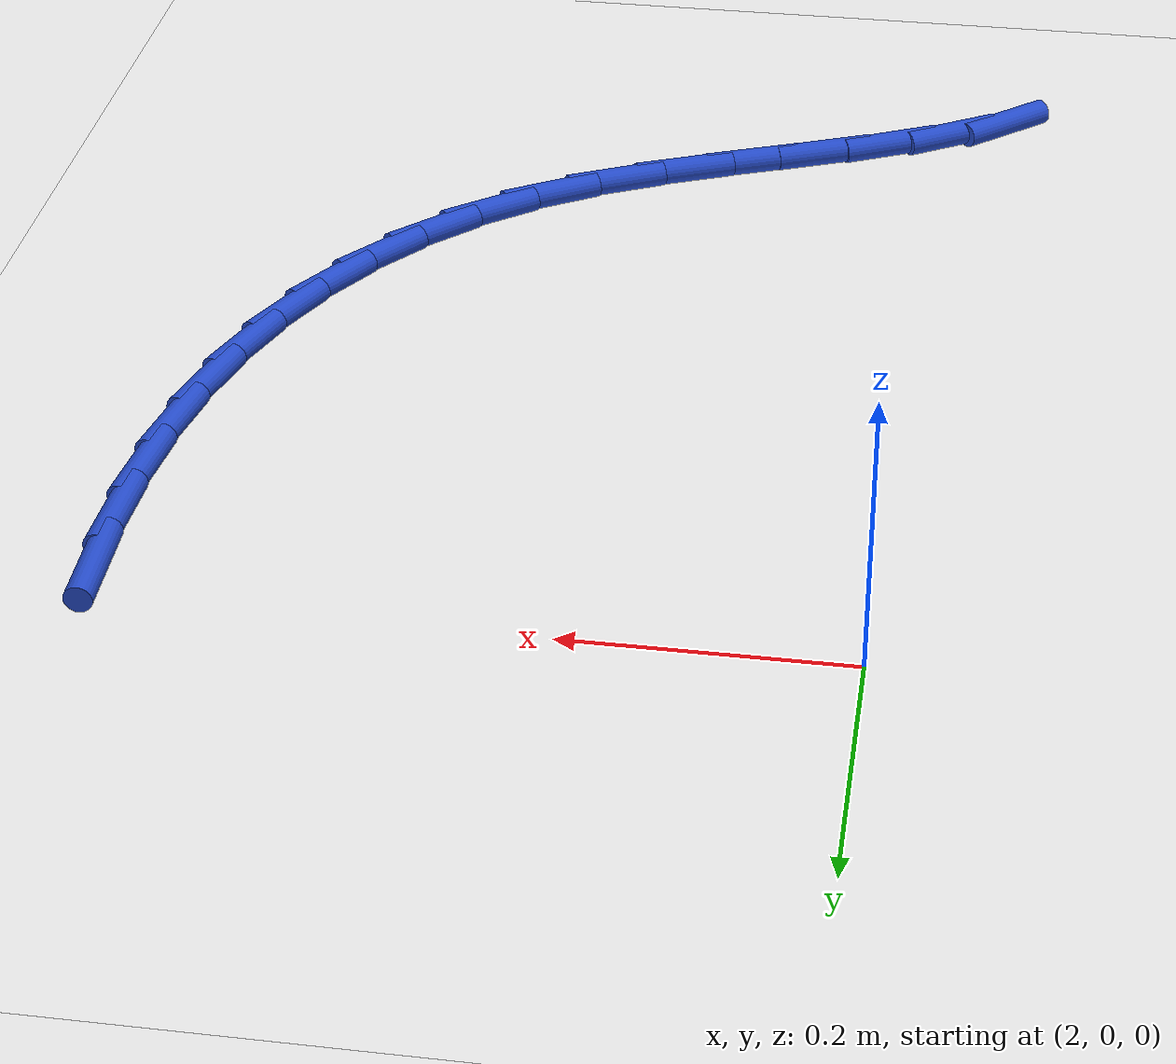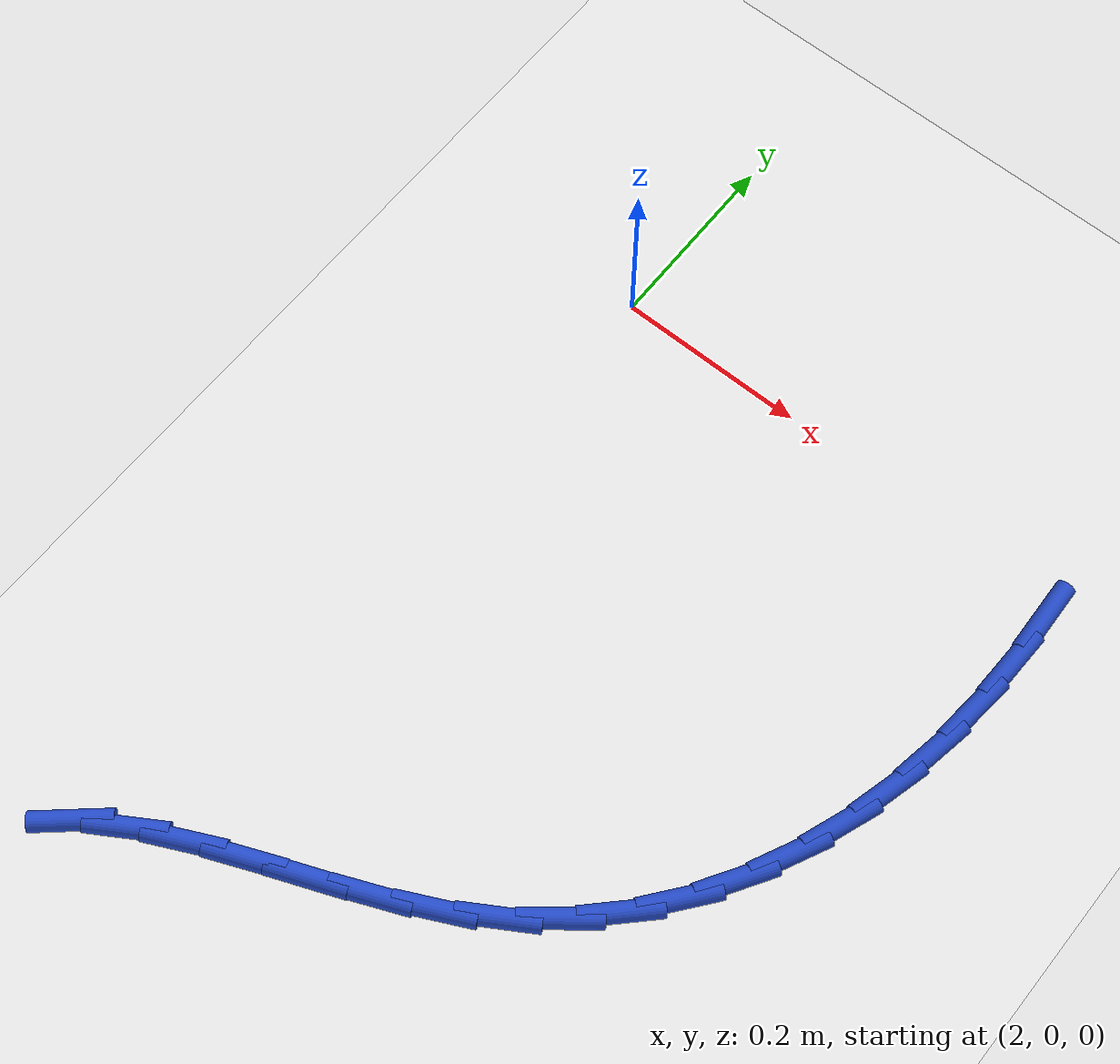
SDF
<sdf version="1.6">
 <world name="default">
  <model name="ground_plane">
   <static>1</static>
   <link name="link">
    <collision name="collision">
     <geometry><plane><normal>0 0 1</normal><size>100 100</size></plane></geometry>
     <surface><friction><ode><mu>100</mu><mu2>50</mu2></ode></friction></surface>
    </collision>
    <visual name="visual">
     <cast_shadows>0</cast_shadows>
     <geometry><plane><normal>0 0 1</normal><size>100 100</size></plane></geometry>
     <material>
      <script><uri>file://media/materials/scripts/gazebo.material</uri><name>Gazebo/WhiteGlow</name></script>
     </material>
    </visual>
   </link>
  </model>
  <model name="line">
   <link name="link_75">
    <pose>2.5114322785562164 -0.024166112826347744 0.01 0 1.57 -1.5385041409601117</pose>
    <collision name="collision">
     <geometry><cylinder><radius>0.01</radius><length>0.08</length></cylinder></geometry>
    </collision>
    <visual name="visual">
     <material>
      <script><name>Gazebo/Blue</name><uri>file://media/materials/scripts/gazebo.material</uri></script>
     </material>
     <geometry><cylinder><radius>0.01</radius><length>0.08</length></cylinder></geometry>
    </visual>
   </link>
   <link name="link_76">
    <pose>2.5133229110953956 -0.08269343979557332 0.01 0 1.57 1.5364087657211327</pose>
    <collision name="collision">
     <geometry><cylinder><radius>0.01</radius><length>0.08</length></cylinder></geometry>
    </collision>
    <visual name="visual">
     <material>
      <script><name>Gazebo/Blue</name><uri>file://media/materials/scripts/gazebo.material</uri></script>
     </material>
     <geometry><cylinder><radius>0.01</radius><length>0.08</length></cylinder></geometry>
    </visual>
   </link>
   <link name="link_77">
    <pose>2.5113339180224545 -0.14051112012497785 0.01 0 1.57 1.465178604417802</pose>
    <collision name="collision">
     <geometry><cylinder><radius>0.01</radius><length>0.08</length></cylinder></geometry>
    </collision>
    <visual name="visual">
     <material>
      <script><name>Gazebo/Blue</name><uri>file://media/materials/scripts/gazebo.material</uri></script>
     </material>
     <geometry><cylinder><radius>0.01</radius><length>0.08</length></cylinder></geometry>
    </visual>
   </link>
   <link name="link_78">
    <pose>2.505320336898751 -0.1972364843530376 0.01 0 1.57 1.3885329587434143</pose>
    <collision name="collision">
     <geometry><cylinder><radius>0.01</radius><length>0.08</length></cylinder></geometry>
    </collision>
    <visual name="visual">
     <material>
      <script><name>Gazebo/Blue</name><uri>file://media/materials/scripts/gazebo.material</uri></script>
     </material>
     <geometry><cylinder><radius>0.01</radius><length>0.08</length></cylinder></geometry>
    </visual>
   </link>
   <link name="link_79">
    <pose>2.4951372052856415 -0.25248686301823176 0.01 0 1.57 1.3056604258463385</pose>
    <collision name="collision">
     <geometry><cylinder><radius>0.01</radius><length>0.08</length></cylinder></geometry>
    </collision>
    <visual name="visual">
     <material>
      <script><name>Gazebo/Blue</name><uri>file://media/materials/scripts/gazebo.material</uri></script>
     </material>
     <geometry><cylinder><radius>0.01</radius><length>0.08</length></cylinder></geometry>
    </visual>
   </link>
   <link name="link_80">
    <pose>2.480639560744484 -0.3058795866590355 0.01 0 1.57 1.2158880588801633</pose>
    <collision name="collision">
     <geometry><cylinder><radius>0.01</radius><length>0.08</length></cylinder></geometry>
    </collision>
    <visual name="visual">
     <material>
      <script><name>Gazebo/Blue</name><uri>file://media/materials/scripts/gazebo.material</uri></script>
     </material>
     <geometry><cylinder><radius>0.01</radius><length>0.08</length></cylinder></geometry>
    </visual>
   </link>
   <link name="link_81">
    <pose>2.461682440836635 -0.35703198581392764 0.01 0 1.57 1.11880699815043</pose>
    <collision name="collision">
     <geometry><cylinder><radius>0.01</radius><length>0.08</length></cylinder></geometry>
    </collision>
    <visual name="visual">
     <material>
      <script><name>Gazebo/Blue</name><uri>file://media/materials/scripts/gazebo.material</uri></script>
     </material>
     <geometry><cylinder><radius>0.01</radius><length>0.08</length></cylinder></geometry>
    </visual>
   </link>
   <link name="link_82">
    <pose>2.4381208831234527 -0.405561391021385 0.01 0 1.57 1.0144334034402884</pose>
    <collision name="collision">
     <geometry><cylinder><radius>0.01</radius><length>0.08</length></cylinder></geometry>
    </collision>
    <visual name="visual">
     <material>
      <script><name>Gazebo/Blue</name><uri>file://media/materials/scripts/gazebo.material</uri></script>
     </material>
     <geometry><cylinder><radius>0.01</radius><length>0.08</length></cylinder></geometry>
    </visual>
   </link>
   <link name="link_83">
    <pose>2.409809925166294 -0.45108513281988316 0.01 0 1.57 0.9033770725466896</pose>
    <collision name="collision">
     <geometry><cylinder><radius>0.01</radius><length>0.08</length></cylinder></geometry>
    </collision>
    <visual name="visual">
     <material>
      <script><name>Gazebo/Blue</name><uri>file://media/materials/scripts/gazebo.material</uri></script>
     </material>
     <geometry><cylinder><radius>0.01</radius><length>0.08</length></cylinder></geometry>
    </visual>
   </link>
   <link name="link_84">
    <pose>2.376604604526515 -0.4932205417479014 0.01 0 1.57 0.7869614347567963</pose>
    <collision name="collision">
     <geometry><cylinder><radius>0.01</radius><length>0.08</length></cylinder></geometry>
    </collision>
    <visual name="visual">
     <material>
      <script><name>Gazebo/Blue</name><uri>file://media/materials/scripts/gazebo.material</uri></script>
     </material>
     <geometry><cylinder><radius>0.01</radius><length>0.08</length></cylinder></geometry>
    </visual>
   </link>
   <link name="link_85">
    <pose>2.3383599587654755 -0.5315849483439153 0.01 0 1.57 0.6672208792427825</pose>
    <collision name="collision">
     <geometry><cylinder><radius>0.01</radius><length>0.08</length></cylinder></geometry>
    </collision>
    <visual name="visual">
     <material>
      <script><name>Gazebo/Blue</name><uri>file://media/materials/scripts/gazebo.material</uri></script>
     </material>
     <geometry><cylinder><radius>0.01</radius><length>0.08</length></cylinder></geometry>
    </visual>
   </link>
   <link name="link_86">
    <pose>2.2949310254445305 -0.5657956831464033 0.01 0 1.57 0.5488275112734352</pose>
    <collision name="collision">
     <geometry><cylinder><radius>0.01</radius><length>0.08</length></cylinder></geometry>
    </collision>
    <visual name="visual">
     <material>
      <script><name>Gazebo/Blue</name><uri>file://media/materials/scripts/gazebo.material</uri></script>
     </material>
     <geometry><cylinder><radius>0.01</radius><length>0.08</length></cylinder></geometry>
    </visual>
   </link>
   <link name="link_87">
    <pose>2.246273275571209 -0.5955495637181066 0.01 0 1.57 0.4575675801792327</pose>
    <collision name="collision">
     <geometry><cylinder><radius>0.01</radius><length>0.08</length></cylinder></geometry>
    </collision>
    <visual name="visual">
     <material>
      <script><name>Gazebo/Blue</name><uri>file://media/materials/scripts/gazebo.material</uri></script>
     </material>
     <geometry><cylinder><radius>0.01</radius><length>0.08</length></cylinder></geometry>
    </visual>
   </link>
   <link name="link_88">
    <pose>2.1935596489665046 -0.6215069608682916 0.01 0 1.57 0.4046172960775463</pose>
    <collision name="collision">
     <geometry><cylinder><radius>0.01</radius><length>0.08</length></cylinder></geometry>
    </collision>
    <visual name="visual">
     <material>
      <script><name>Gazebo/Blue</name><uri>file://media/materials/scripts/gazebo.material</uri></script>
     </material>
     <geometry><cylinder><radius>0.01</radius><length>0.08</length></cylinder></geometry>
    </visual>
   </link>
   <link name="link_89">
    <pose>2.138772926887928 -0.6449691861323429 0.01 0 1.57 0.3857590403262176</pose>
    <collision name="collision">
     <geometry><cylinder><radius>0.01</radius><length>0.08</length></cylinder></geometry>
    </collision>
    <visual name="visual">
     <material>
      <script><name>Gazebo/Blue</name><uri>file://media/materials/scripts/gazebo.material</uri></script>
     </material>
     <geometry><cylinder><radius>0.01</radius><length>0.08</length></cylinder></geometry>
    </visual>
   </link>
   <link name="link_90">
    <pose>2.0839105266858624 -0.667249134631725 0.01 0 1.57 0.40044242714620226</pose>
    <collision name="collision">
     <geometry><cylinder><radius>0.01</radius><length>0.08</length></cylinder></geometry>
    </collision>
    <visual name="visual">
     <material>
      <script><name>Gazebo/Blue</name><uri>file://media/materials/scripts/gazebo.material</uri></script>
     </material>
     <geometry><cylinder><radius>0.01</radius><length>0.08</length></cylinder></geometry>
    </visual>
   </link>
   <link name="link_91">
    <pose>2.0309698657106896 -0.6896597014879018 0.01 0 1.57 0.45287382496054873</pose>
    <collision name="collision">
     <geometry><cylinder><radius>0.01</radius><length>0.08</length></cylinder></geometry>
    </collision>
    <visual name="visual">
     <material>
      <script><name>Gazebo/Blue</name><uri>file://media/materials/scripts/gazebo.material</uri></script>
     </material>
     <geometry><cylinder><radius>0.01</radius><length>0.08</length></cylinder></geometry>
    </visual>
   </link>
   <link name="link_92">
    <pose>1.981948361312791 -0.7135137818223394 0.01 0 1.57 0.5530735592796258</pose>
    <collision name="collision">
     <geometry><cylinder><radius>0.01</radius><length>0.08</length></cylinder></geometry>
    </collision>
    <visual name="visual">
     <material>
      <script><name>Gazebo/Blue</name><uri>file://media/materials/scripts/gazebo.material</uri></script>
     </material>
     <geometry><cylinder><radius>0.01</radius><length>0.08</length></cylinder></geometry>
    </visual>
   </link>
   <link name="link_93">
    <pose>1.9388434308425495 -0.7401242707565014 0.01 0 1.57 0.7170200916061559</pose>
    <collision name="collision">
     <geometry><cylinder><radius>0.01</radius><length>0.08</length></cylinder></geometry>
    </collision>
    <visual name="visual">
     <material>
      <script><name>Gazebo/Blue</name><uri>file://media/materials/scripts/gazebo.material</uri></script>
     </material>
     <geometry><cylinder><radius>0.01</radius><length>0.08</length></cylinder></geometry>
    </visual>
   </link>
  </model>
 </world>
</sdf>
